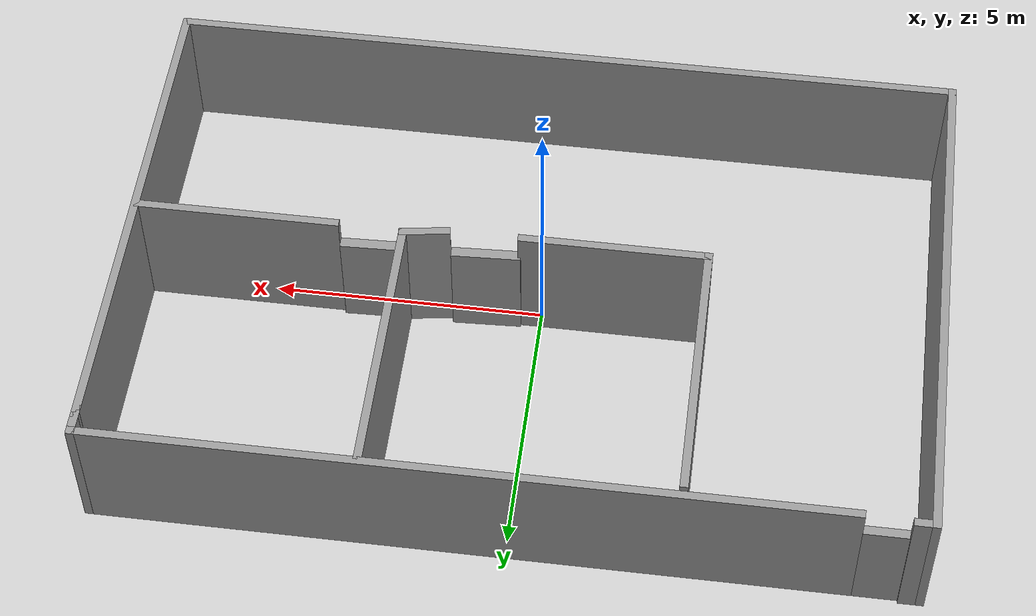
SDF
<sdf version="1.7">
 <world name="default">
  <light name="sun" type="directional">
   <pose>0 0 10 0 -0 0</pose>
   <diffuse>0.8 0.8 0.8 1</diffuse>
   <specular>0.2 0.2 0.2 1</specular>
   <attenuation>
    <range>1000</range>
    <constant>0.9</constant>
    <linear>0.01</linear>
    <quadratic>0.001</quadratic>
   </attenuation>
   <direction>-0.5 0.1 -0.9</direction>
   <spot><inner_angle>0</inner_angle><outer_angle>0</outer_angle><falloff>0</falloff></spot>
  </light>
  <model name="ground_plane">
   <static>1</static>
   <link name="link">
    <collision name="collision">
     <geometry><plane><normal>0 0 1</normal><size>100 100</size></plane></geometry>
     <surface>
      <contact><collide_bitmask>65535</collide_bitmask></contact>
      <friction><ode><mu>100</mu><mu2>50</mu2></ode></friction>
     </surface>
    </collision>
    <visual name="visual">
     <cast_shadows>0</cast_shadows>
     <geometry><plane><normal>0 0 1</normal><size>100 100</size></plane></geometry>
     <material>
      <script><uri>file://media/materials/scripts/gazebo.material</uri><name>Gazebo/Grey</name></script>
     </material>
    </visual>
   </link>
  </model>
  <gravity>0 0 -9.8</gravity>
  <magnetic_field>6e-06 2.3e-05 -4.2e-05</magnetic_field>
  <atmosphere type="adiabatic"/>
  <physics type="ode">
   <max_step_size>0.001</max_step_size>
   <real_time_factor>1</real_time_factor>
   <real_time_update_rate>1000</real_time_update_rate>
  </physics>
  <scene><ambient>0.4 0.4 0.4 1</ambient><background>0.7 0.7 0.7 1</background><shadows>1</shadows></scene>
  <spherical_coordinates>
   <surface_model>EARTH_WGS84</surface_model>
   <latitude_deg>0</latitude_deg>
   <longitude_deg>0</longitude_deg>
   <elevation>0</elevation>
   <heading_deg>0</heading_deg>
  </spherical_coordinates>
  <model name="warehouse_03">
   <pose>0.094396 0.518237 0 0 -0 0</pose>
   <link name="Door_0">
    <collision name="Door_0_Collision">
     <geometry><box><size>0.9 0.17 2</size></box></geometry>
     <pose>0 0 1 0 -0 0</pose>
    </collision>
    <visual name="Door_0_Visual">
     <pose>0 0 1 0 -0 0</pose>
     <geometry><box><size>0.9 0.17 2</size></box></geometry>
     <material>
      <script><uri>file://media/materials/scripts/gazebo.material</uri><name>Gazebo/Grey</name></script>
     </material>
    </visual>
    <pose>-6.53333 4.73867 0 0 -0 0</pose>
   </link>
   <link name="Door_1">
    <collision name="Door_1_Collision">
     <geometry><box><size>1.26366 0.2 2</size></box></geometry>
     <pose>0 0 1 0 -0 0</pose>
    </collision>
    <visual name="Door_1_Visual">
     <pose>0 0 1 0 -0 0</pose>
     <geometry><box><size>1.26366 0.2 2</size></box></geometry>
     <material>
      <script><uri>file://media/materials/scripts/gazebo.material</uri><name>Gazebo/Grey</name></script>
     </material>
    </visual>
    <pose>0.90261 -0.280291 0 0 0 -3.09848</pose>
   </link>
   <link name="Door_2">
    <collision name="Door_2_Collision">
     <geometry><box><size>1.11746 0.2 2</size></box></geometry>
     <pose>0 0 1 0 -0 0</pose>
    </collision>
    <visual name="Door_2_Visual">
     <pose>0 0 1 0 -0 0</pose>
     <geometry><box><size>1.11746 0.2 2</size></box></geometry>
     <material>
      <script><uri>file://media/materials/scripts/gazebo.material</uri><name>Gazebo/Grey</name></script>
     </material>
    </visual>
    <pose>2.99697 -0.236679 0 0 -0 -3.11094</pose>
   </link>
   <link name="Wall_0">
    <collision name="Wall_0_Collision">
     <geometry><box><size>9.75 0.15 2.5</size></box></geometry>
     <pose>0 0 1.25 0 -0 0</pose>
    </collision>
    <visual name="Wall_0_Visual">
     <pose>0 0 1.25 0 -0 0</pose>
     <geometry><box><size>9.75 0.15 2.5</size></box></geometry>
     <material>
      <script><uri>file://media/materials/scripts/gazebo.material</uri><name>Gazebo/Grey</name></script>
      <ambient>1 1 1 1</ambient>
     </material>
     <meta><layer>0</layer></meta>
    </visual>
    <pose>-7.3 0 0 0 -0 -1.5708</pose>
   </link>
   <link name="Wall_1">
    <collision name="Wall_1_Collision">
     <geometry><box><size>14.75 0.15 2.5</size></box></geometry>
     <pose>0 0 1.25 0 -0 0</pose>
    </collision>
    <visual name="Wall_1_Visual">
     <pose>0 0 1.25 0 -0 0</pose>
     <geometry><box><size>14.75 0.15 2.5</size></box></geometry>
     <material>
      <script><uri>file://media/materials/scripts/gazebo.material</uri><name>Gazebo/Grey</name></script>
      <ambient>1 1 1 1</ambient>
     </material>
     <meta><layer>0</layer></meta>
    </visual>
    <pose>0 -4.8 0 0 -0 0</pose>
   </link>
   <link name="Wall_10">
    <collision name="Wall_10_Collision">
     <geometry><box><size>5 0.15 2.5</size></box></geometry>
     <pose>0 0 1.25 0 -0 0</pose>
    </collision>
    <visual name="Wall_10_Visual">
     <pose>0 0 1.25 0 -0 0</pose>
     <geometry><box><size>5 0.15 2.5</size></box></geometry>
     <material>
      <script><uri>file://media/materials/scripts/gazebo.material</uri><name>Gazebo/Grey</name></script>
      <ambient>1 1 1 1</ambient>
     </material>
     <meta><layer>0</layer></meta>
    </visual>
    <pose>-3.09867 2.099 0 0 -0 -1.5708</pose>
   </link>
   <link name="Wall_11">
    <collision name="Wall_11_Collision">
     <geometry><box><size>3.5 0.15 2.5</size></box></geometry>
     <pose>0 0 1.25 0 -0 0</pose>
    </collision>
    <visual name="Wall_11_Visual">
     <pose>0 0 1.25 0 -0 0</pose>
     <geometry><box><size>3.5 0.15 2.5</size></box></geometry>
     <material>
      <script><uri>file://media/materials/scripts/gazebo.material</uri><name>Gazebo/Grey</name></script>
      <ambient>1 1 1 1</ambient>
     </material>
     <meta><layer>0</layer></meta>
    </visual>
    <pose>-1.42367 -0.326 0 0 -0 0</pose>
   </link>
   <link name="Wall_13">
    <collision name="Wall_13_Collision">
     <geometry><box><size>5 0.15 2.5</size></box></geometry>
     <pose>0 0 1.25 0 -0 0</pose>
    </collision>
    <visual name="Wall_13_Visual">
     <pose>0 0 1.25 0 -0 0</pose>
     <geometry><box><size>5 0.15 2.5</size></box></geometry>
     <material>
      <script><uri>file://media/materials/scripts/gazebo.material</uri><name>Gazebo/Grey</name></script>
      <ambient>1 1 1 1</ambient>
     </material>
     <meta><layer>0</layer></meta>
    </visual>
    <pose>2.39067 2.22167 0 0 -0 -1.5708</pose>
   </link>
   <link name="Wall_15">
    <collision name="Wall_15_Collision">
     <geometry><box><size>3.75 0.15 2.5</size></box></geometry>
     <pose>0 0 1.25 0 -0 0</pose>
    </collision>
    <visual name="Wall_15_Visual">
     <pose>0 0 1.25 0 -0 0</pose>
     <geometry><box><size>3.75 0.15 2.5</size></box></geometry>
     <material>
      <script><uri>file://media/materials/scripts/gazebo.material</uri><name>Gazebo/Grey</name></script>
      <ambient>1 1 1 1</ambient>
     </material>
     <meta><layer>0</layer></meta>
    </visual>
    <pose>5.436 -0.26 0 0 -0 3.14159</pose>
   </link>
   <link name="Wall_19">
    <collision name="Wall_19_Collision">
     <geometry><box><size>0.925694 0.15 2.5</size></box></geometry>
     <pose>0 0 1.25 0 -0 0</pose>
    </collision>
    <visual name="Wall_19_Visual">
     <pose>0 0 1.25 0 -0 0</pose>
     <geometry><box><size>0.925694 0.15 2.5</size></box></geometry>
     <material>
      <script><uri>file://media/materials/scripts/gazebo.material</uri><name>Gazebo/Grey</name></script>
      <ambient>1 1 1 1</ambient>
     </material>
     <meta><layer>0</layer></meta>
    </visual>
    <pose>2.00733 -0.262333 0 0 -0 0.152715</pose>
   </link>
   <link name="Wall_2">
    <collision name="Wall_2_Collision">
     <geometry><box><size>9.25 0.15 2.5</size></box></geometry>
     <pose>0 0 1.25 0 -0 0</pose>
    </collision>
    <visual name="Wall_2_Visual">
     <pose>0 0 1.25 0 -0 0</pose>
     <geometry><box><size>9.25 0.15 2.5</size></box></geometry>
     <material>
      <script><uri>file://media/materials/scripts/gazebo.material</uri><name>Gazebo/Grey</name></script>
      <ambient>1 1 1 1</ambient>
     </material>
     <meta><layer>0</layer></meta>
    </visual>
    <pose>7.3 -0.25 0 0 -0 1.5708</pose>
   </link>
   <link name="Wall_3">
    <collision name="Wall_3_Collision">
     <geometry><box><size>0.15 0.15 2.5</size></box></geometry>
     <pose>0 0 1.25 0 -0 0</pose>
    </collision>
    <visual name="Wall_3_Visual">
     <pose>0 0 1.25 0 -0 0</pose>
     <geometry><box><size>0.15 0.15 2.5</size></box></geometry>
     <material>
      <script><uri>file://media/materials/scripts/gazebo.material</uri><name>Gazebo/Grey</name></script>
      <ambient>1 1 1 1</ambient>
     </material>
     <meta><layer>0</layer></meta>
    </visual>
    <pose>7.3 4.3 0 0 -0 0</pose>
   </link>
   <link name="Wall_4">
    <collision name="Wall_4_Collision">
     <geometry><box><size>0.25 0.15 2.5</size></box></geometry>
     <pose>0 0 1.25 0 -0 0</pose>
    </collision>
    <visual name="Wall_4_Visual">
     <pose>0 0 1.25 0 -0 0</pose>
     <geometry><box><size>0.25 0.15 2.5</size></box></geometry>
     <material>
      <script><uri>file://media/materials/scripts/gazebo.material</uri><name>Gazebo/Grey</name></script>
      <ambient>1 1 1 1</ambient>
     </material>
     <meta><layer>0</layer></meta>
    </visual>
    <pose>7.3 4.35 0 0 -0 1.5708</pose>
   </link>
   <link name="Wall_5">
    <collision name="Wall_5_Collision">
     <geometry><box><size>0.5 0.15 2.5</size></box></geometry>
     <pose>0 0 1.25 0 -0 0</pose>
    </collision>
    <visual name="Wall_5_Visual">
     <pose>0 0 1.25 0 -0 0</pose>
     <geometry><box><size>0.5 0.15 2.5</size></box></geometry>
     <material>
      <script><uri>file://media/materials/scripts/gazebo.material</uri><name>Gazebo/Grey</name></script>
      <ambient>1 1 1 1</ambient>
     </material>
     <meta><layer>0</layer></meta>
    </visual>
    <pose>7.3 4.575 0 0 -0 1.5708</pose>
   </link>
   <link name="Wall_6">
    <collision name="Wall_6_Collision">
     <geometry><box><size>13.5 0.15 2.5</size></box></geometry>
     <pose>0 0 1.25 0 -0 0</pose>
    </collision>
    <visual name="Wall_6_Visual">
     <pose>0 0 1.25 0 -0 0</pose>
     <geometry><box><size>13.5 0.15 2.5</size></box></geometry>
     <material>
      <script><uri>file://media/materials/scripts/gazebo.material</uri><name>Gazebo/Grey</name></script>
      <ambient>1 1 1 1</ambient>
     </material>
     <meta><layer>0</layer></meta>
    </visual>
    <pose>0.625 4.75 0 0 -0 3.14159</pose>
   </link>
   <link name="Wall_8">
    <collision name="Wall_8_Collision">
     <geometry><box><size>0.456667 0.15 2.5</size></box></geometry>
     <pose>0 0 1.25 0 -0 0</pose>
    </collision>
    <visual name="Wall_8_Visual">
     <pose>0 0 1.25 0 -0 0</pose>
     <geometry><box><size>0.456667 0.15 2.5</size></box></geometry>
     <material>
      <script><uri>file://media/materials/scripts/gazebo.material</uri><name>Gazebo/Grey</name></script>
      <ambient>1 1 1 1</ambient>
     </material>
     <meta><layer>0</layer></meta>
    </visual>
    <pose>-7.14667 4.8 0 0 -0 3.14159</pose>
   </link>
   <static>1</static>
  </model>
 </world>
</sdf>
